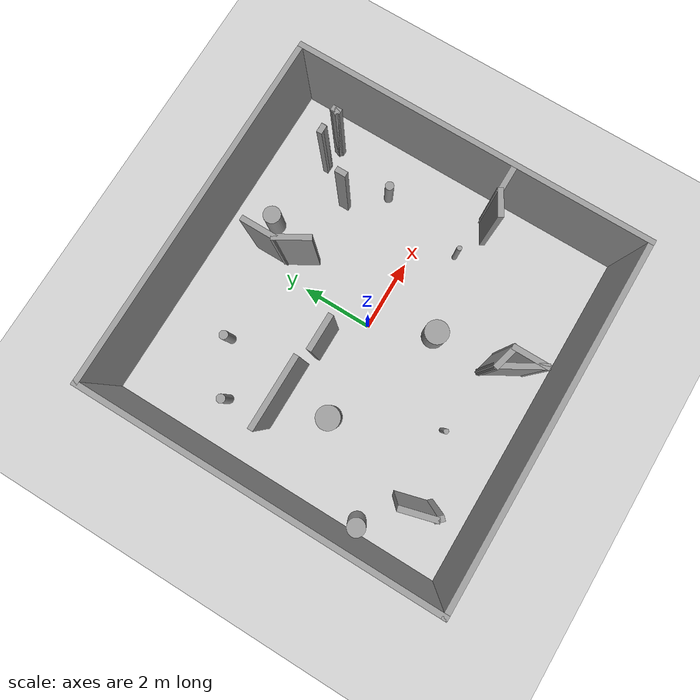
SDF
<sdf version="1.6">
 <world name="default">
  <light name="sun" type="directional">
   <pose>0 0 10 0 -0 0</pose>
   <diffuse>0.8 0.8 0.8 1</diffuse>
   <specular>0.2 0.2 0.2 1</specular>
   <attenuation>
    <range>1000</range>
    <constant>0.9</constant>
    <linear>0.01</linear>
    <quadratic>0.001</quadratic>
   </attenuation>
   <direction>-0.5 0.1 -0.9</direction>
  </light>
  <model name="ground_plane">
   <static>1</static>
   <link name="link">
    <collision name="collision">
     <geometry><plane><normal>0 0 1</normal><size>100 100</size></plane></geometry>
     <surface><friction><ode><mu>100</mu><mu2>50</mu2></ode></friction></surface>
    </collision>
    <visual name="visual">
     <cast_shadows>0</cast_shadows>
     <geometry><plane><normal>0 0 1</normal><size>100 100</size></plane></geometry>
     <material>
      <ambient>1 1 1 1</ambient>
      <diffuse>0.8 0.8 0.8 1</diffuse>
      <specular>0.01 0.01 0.01 1</specular>
     </material>
    </visual>
   </link>
  </model>
  <gravity>0 0 -9.8</gravity>
  <magnetic_field>6e-06 2.3e-05 -4.2e-05</magnetic_field>
  <atmosphere type="adiabatic"/>
  <physics name="default_physics" default="0" type="ode">
   <max_step_size>0.001</max_step_size>
   <real_time_factor>1</real_time_factor>
   <real_time_update_rate>1000</real_time_update_rate>
  </physics>
  <scene><ambient>0.4 0.4 0.4 1</ambient><background>0.7 0.7 0.7 1</background><shadows>1</shadows></scene>
  <spherical_coordinates>
   <surface_model>EARTH_WGS84</surface_model>
   <latitude_deg>0</latitude_deg>
   <longitude_deg>0</longitude_deg>
   <elevation>0</elevation>
   <heading_deg>0</heading_deg>
  </spherical_coordinates>
  <plugin name="gazebo_occupancy_map" filename="libgazebo_2Dmap_plugin.so">
   <map_resolution>0.025</map_resolution>
   <map_height>0.1</map_height>
  </plugin>
  <model name="10x10_training">
   <pose>0.025359 -0.006233 0 0 -0 0</pose>
   <link name="Wall_11">
    <collision name="Wall_11_Collision">
     <geometry><box><size>10 0.15 2.5</size></box></geometry>
     <pose>0 0 1.25 0 -0 0</pose>
    </collision>
    <visual name="Wall_11_Visual">
     <pose>0 0 1.25 0 -0 0</pose>
     <geometry><box><size>10 0.15 2.5</size></box></geometry>
     <material>
      <script><uri>file://media/materials/scripts/gazebo.material</uri><name>Gazebo/Grey</name></script>
      <ambient>1 1 1 1</ambient>
     </material>
     <meta><layer>0</layer></meta>
    </visual>
    <pose>0 -4.925 0 0 -0 3.14159</pose>
   </link>
   <link name="Wall_12">
    <collision name="Wall_12_Collision">
     <geometry><box><size>10 0.15 2.5</size></box></geometry>
     <pose>0 0 1.25 0 -0 0</pose>
    </collision>
    <visual name="Wall_12_Visual">
     <pose>0 0 1.25 0 -0 0</pose>
     <geometry><box><size>10 0.15 2.5</size></box></geometry>
     <material>
      <script><uri>file://media/materials/scripts/gazebo.material</uri><name>Gazebo/Grey</name></script>
      <ambient>1 1 1 1</ambient>
     </material>
     <meta><layer>0</layer></meta>
    </visual>
    <pose>-4.925 0 0 0 -0 1.5708</pose>
   </link>
   <link name="Wall_13">
    <collision name="Wall_13_Collision">
     <geometry><box><size>10 0.15 2.5</size></box></geometry>
     <pose>0 0 1.25 0 -0 0</pose>
    </collision>
    <visual name="Wall_13_Visual">
     <pose>0 0 1.25 0 -0 0</pose>
     <geometry><box><size>10 0.15 2.5</size></box></geometry>
     <material>
      <script><uri>file://media/materials/scripts/gazebo.material</uri><name>Gazebo/Grey</name></script>
      <ambient>1 1 1 1</ambient>
     </material>
     <meta><layer>0</layer></meta>
    </visual>
    <pose>0 4.925 0 0 -0 0</pose>
   </link>
   <link name="Wall_9">
    <collision name="Wall_9_Collision">
     <geometry><box><size>10 0.15 2.5</size></box></geometry>
     <pose>0 0 1.25 0 -0 0</pose>
    </collision>
    <visual name="Wall_9_Visual">
     <pose>0 0 1.25 0 -0 0</pose>
     <geometry><box><size>10 0.15 2.5</size></box></geometry>
     <material>
      <script><uri>file://media/materials/scripts/gazebo.material</uri><name>Gazebo/Grey</name></script>
      <ambient>1 1 1 1</ambient>
     </material>
     <meta><layer>0</layer></meta>
    </visual>
    <pose>4.925 0 0 0 0 -1.5708</pose>
   </link>
   <static>1</static>
  </model>
  <model name="cylinder0">
   <pose>1.1301 3.65341 0.5 0 -0 0</pose>
   <link name="link">
    <collision name="collision">
     <geometry><cylinder><radius>0.245872</radius><length>1</length></cylinder></geometry>
    </collision>
    <visual name="visual">
     <geometry><cylinder><radius>0.245872</radius><length>1</length></cylinder></geometry>
     <material>
      <script><name>Gazebo/Grey</name><uri>file://media/materials/scripts/gazebo.material</uri></script>
     </material>
    </visual>
   </link>
   <static>1</static>
  </model>
  <model name="cylinder1">
   <pose>-1.38282 -3.13892 0.5 0 0 -1e-06</pose>
   <link name="link">
    <collision name="collision">
     <geometry><cylinder><radius>0.07</radius><length>1</length></cylinder></geometry>
    </collision>
    <visual name="visual">
     <geometry><cylinder><radius>0.07</radius><length>1</length></cylinder></geometry>
     <material>
      <script><name>Gazebo/Grey</name><uri>file://media/materials/scripts/gazebo.material</uri></script>
     </material>
    </visual>
   </link>
   <static>1</static>
  </model>
  <model name="cylinder2">
   <pose>-2.22229 3.00079 0.5 0 0 -1e-06</pose>
   <link name="link">
    <inertial>
     <mass>1</mass>
     <inertia><ixx>0.145833</ixx><ixy>0</ixy><ixz>0</ixz><iyy>0.145833</iyy><iyz>0</iyz><izz>0.125</izz></inertia>
    </inertial>
    <collision name="collision">
     <geometry><cylinder><radius>0.122936</radius><length>1</length></cylinder></geometry>
    </collision>
    <visual name="visual">
     <geometry><cylinder><radius>0.122936</radius><length>1</length></cylinder></geometry>
     <material>
      <script><name>Gazebo/Grey</name><uri>file://media/materials/scripts/gazebo.material</uri></script>
     </material>
    </visual>
   </link>
   <static>1</static>
  </model>
  <model name="unit_cylinder_clone_1">
   <pose>3.42897 1.38684 0.499993 0 0 -1e-06</pose>
   <link name="link">
    <collision name="collision">
     <geometry><cylinder><radius>0.122936</radius><length>1</length></cylinder></geometry>
    </collision>
    <visual name="visual">
     <geometry><cylinder><radius>0.122936</radius><length>1</length></cylinder></geometry>
     <material>
      <script><name>Gazebo/Grey</name><uri>file://media/materials/scripts/gazebo.material</uri></script>
     </material>
    </visual>
   </link>
   <static>1</static>
  </model>
  <model name="cylinder4">
   <pose>-2.63498 -0.410115 0.5 0 0 -1e-06</pose>
   <link name="link">
    <collision name="collision">
     <geometry><cylinder><radius>0.33</radius><length>1</length></cylinder></geometry>
    </collision>
    <visual name="visual">
     <geometry><cylinder><radius>0.33</radius><length>1</length></cylinder></geometry>
     <material>
      <script><name>Gazebo/Grey</name><uri>file://media/materials/scripts/gazebo.material</uri></script>
     </material>
    </visual>
   </link>
   <static>1</static>
  </model>
  <model name="cylinder1_clone">
   <pose>2.90594 -1.06298 0.5 0 0 -1e-06</pose>
   <link name="link">
    <collision name="collision">
     <geometry><cylinder><radius>0.07</radius><length>1</length></cylinder></geometry>
    </collision>
    <visual name="visual">
     <geometry><cylinder><radius>0.07</radius><length>1</length></cylinder></geometry>
     <material>
      <script><name>Gazebo/Grey</name><uri>file://media/materials/scripts/gazebo.material</uri></script>
     </material>
    </visual>
   </link>
   <static>1</static>
  </model>
  <model name="unit_cylinder_clone_1_clone">
   <pose>-3.62387 2.17324 0.499993 0 0 -1e-06</pose>
   <link name="link">
    <collision name="collision">
     <geometry><cylinder><radius>0.122936</radius><length>1</length></cylinder></geometry>
    </collision>
    <visual name="visual">
     <geometry><cylinder><radius>0.122936</radius><length>1</length></cylinder></geometry>
     <material>
      <script><name>Gazebo/Grey</name><uri>file://media/materials/scripts/gazebo.material</uri></script>
     </material>
    </visual>
   </link>
   <static>1</static>
  </model>
  <model name="cylinder4_clone">
   <pose>0.677816 -1.67404 0.5 0 0 -1e-06</pose>
   <link name="link">
    <collision name="collision">
     <geometry><cylinder><radius>0.33</radius><length>1</length></cylinder></geometry>
    </collision>
    <visual name="visual">
     <geometry><cylinder><radius>0.33</radius><length>1</length></cylinder></geometry>
     <material>
      <script><name>Gazebo/Grey</name><uri>file://media/materials/scripts/gazebo.material</uri></script>
     </material>
    </visual>
   </link>
   <static>1</static>
  </model>
  <model name="cylinder0_clone">
   <pose>-4.54298 -2.40592 0.5 0 -0 0</pose>
   <link name="link">
    <collision name="collision">
     <geometry><cylinder><radius>0.245872</radius><length>1</length></cylinder></geometry>
    </collision>
    <visual name="visual">
     <geometry><cylinder><radius>0.245872</radius><length>1</length></cylinder></geometry>
     <material>
      <script><name>Gazebo/Grey</name><uri>file://media/materials/scripts/gazebo.material</uri></script>
     </material>
    </visual>
   </link>
   <static>1</static>
  </model>
  <model name="more_extra_walls">
   <pose>0.5795 -0.267345 0 0 -0 0</pose>
   <link name="Wall_1">
    <collision name="Wall_1_Collision">
     <geometry><box><size>0.25 0.15 2.5</size></box></geometry>
     <pose>0 0 1.25 0 -0 0</pose>
    </collision>
    <visual name="Wall_1_Visual">
     <pose>0 0 1.25 0 -0 0</pose>
     <geometry><box><size>0.25 0.15 2.5</size></box></geometry>
     <material>
      <script><uri>file://media/materials/scripts/gazebo.material</uri><name>Gazebo/Grey</name></script>
      <ambient>1 1 1 1</ambient>
     </material>
     <meta><layer>0</layer></meta>
    </visual>
    <pose>-3.76485 -3.5173 0 0 -0 2.35619</pose>
   </link>
   <link name="Wall_12">
    <collision name="Wall_12_Collision">
     <geometry><box><size>0.75 0.15 2.5</size></box></geometry>
     <pose>0 0 1.25 0 -0 0</pose>
    </collision>
    <visual name="Wall_12_Visual">
     <pose>0 0 1.25 0 -0 0</pose>
     <geometry><box><size>0.75 0.15 2.5</size></box></geometry>
     <material>
      <script><uri>file://media/materials/scripts/gazebo.material</uri><name>Gazebo/Grey</name></script>
      <ambient>1 1 1 1</ambient>
     </material>
     <meta><layer>0</layer></meta>
    </visual>
    <pose>3.9205 -0.942655 0 0 -0 0</pose>
   </link>
   <link name="Wall_14">
    <collision name="Wall_14_Collision">
     <geometry><box><size>0.75 0.15 2.5</size></box></geometry>
     <pose>0 0 1.25 0 -0 0</pose>
    </collision>
    <visual name="Wall_14_Visual">
     <pose>0 0 1.25 0 -0 0</pose>
     <geometry><box><size>0.75 0.15 2.5</size></box></geometry>
     <material>
      <script><uri>file://media/materials/scripts/gazebo.material</uri><name>Gazebo/Grey</name></script>
      <ambient>1 1 1 1</ambient>
     </material>
     <meta><layer>0</layer></meta>
    </visual>
    <pose>3.36069 -1.09265 0 0 0 -2.61799</pose>
   </link>
   <link name="Wall_16">
    <collision name="Wall_16_Collision">
     <geometry><box><size>2 0.15 2.5</size></box></geometry>
     <pose>0 0 1.25 0 -0 0</pose>
    </collision>
    <visual name="Wall_16_Visual">
     <pose>0 0 1.25 0 -0 0</pose>
     <geometry><box><size>2 0.15 2.5</size></box></geometry>
     <material>
      <script><uri>file://media/materials/scripts/gazebo.material</uri><name>Gazebo/Grey</name></script>
      <ambient>1 1 1 1</ambient>
     </material>
     <meta><layer>0</layer></meta>
    </visual>
    <pose>-3.2955 1.16034 0 0 -0 0</pose>
   </link>
   <link name="Wall_18">
    <collision name="Wall_18_Collision">
     <geometry><box><size>1 0.15 2.5</size></box></geometry>
     <pose>0 0 1.25 0 -0 0</pose>
    </collision>
    <visual name="Wall_18_Visual">
     <pose>0 0 1.25 0 -0 0</pose>
     <geometry><box><size>1 0.15 2.5</size></box></geometry>
     <material>
      <script><uri>file://media/materials/scripts/gazebo.material</uri><name>Gazebo/Grey</name></script>
      <ambient>1 1 1 1</ambient>
     </material>
     <meta><layer>0</layer></meta>
    </visual>
    <pose>-1.5645 0.976345 0 0 -0 0</pose>
   </link>
   <link name="Wall_2">
    <collision name="Wall_2_Collision">
     <geometry><box><size>1 0.15 2.5</size></box></geometry>
     <pose>0 0 1.25 0 -0 0</pose>
    </collision>
    <visual name="Wall_2_Visual">
     <pose>0 0 1.25 0 -0 0</pose>
     <geometry><box><size>1 0.15 2.5</size></box></geometry>
     <material>
      <script><uri>file://media/materials/scripts/gazebo.material</uri><name>Gazebo/Grey</name></script>
      <ambient>1 1 1 1</ambient>
     </material>
     <meta><layer>0</layer></meta>
    </visual>
    <pose>-3.91021 -3.07143 0 0 -0 1.8326</pose>
   </link>
   <link name="Wall_20">
    <collision name="Wall_20_Collision">
     <geometry><box><size>1 0.15 2.5</size></box></geometry>
     <pose>0 0 1.25 0 -0 0</pose>
    </collision>
    <visual name="Wall_20_Visual">
     <pose>0 0 1.25 0 -0 0</pose>
     <geometry><box><size>1 0.15 2.5</size></box></geometry>
     <material>
      <script><uri>file://media/materials/scripts/gazebo.material</uri><name>Gazebo/Grey</name></script>
      <ambient>1 1 1 1</ambient>
     </material>
     <meta><layer>0</layer></meta>
    </visual>
    <pose>-0.184395 3.55509 0 0 0 -1.5708</pose>
   </link>
   <link name="Wall_21">
    <collision name="Wall_21_Collision">
     <geometry><box><size>1 0.15 2.5</size></box></geometry>
     <pose>0 0 1.25 0 -0 0</pose>
    </collision>
    <visual name="Wall_21_Visual">
     <pose>0 0 1.25 0 -0 0</pose>
     <geometry><box><size>1 0.15 2.5</size></box></geometry>
     <material>
      <script><uri>file://media/materials/scripts/gazebo.material</uri><name>Gazebo/Grey</name></script>
      <ambient>1 1 1 1</ambient>
     </material>
     <meta><layer>0</layer></meta>
    </visual>
    <pose>0.028105 2.76203 0 0 0 -1.0472</pose>
   </link>
   <link name="Wall_25">
    <collision name="Wall_25_Collision">
     <geometry><box><size>0.214579 0.15 2.5</size></box></geometry>
     <pose>0 0 1.25 0 -0 0</pose>
    </collision>
    <visual name="Wall_25_Visual">
     <pose>0 0 1.25 0 -0 0</pose>
     <geometry><box><size>0.214579 0.15 2.5</size></box></geometry>
     <material>
      <script><uri>file://media/materials/scripts/gazebo.material</uri><name>Gazebo/Grey</name></script>
      <ambient>1 1 1 1</ambient>
     </material>
     <meta><layer>0</layer></meta>
    </visual>
    <pose>3.30278 3.55424 0 0 0 -1.91299</pose>
   </link>
   <link name="Wall_26">
    <collision name="Wall_26_Collision">
     <geometry><box><size>0.214579 0.15 2.5</size></box></geometry>
     <pose>0 0 1.25 0 -0 0</pose>
    </collision>
    <visual name="Wall_26_Visual">
     <pose>0 0 1.25 0 -0 0</pose>
     <geometry><box><size>0.214579 0.15 2.5</size></box></geometry>
     <material>
      <script><uri>file://media/materials/scripts/gazebo.material</uri><name>Gazebo/Grey</name></script>
      <ambient>1 1 1 1</ambient>
     </material>
     <meta><layer>0</layer></meta>
    </visual>
    <pose>3.30278 3.55424 0 0 -0 1.2286</pose>
   </link>
   <link name="Wall_27">
    <collision name="Wall_27_Collision">
     <geometry><box><size>0.214579 0.15 2.5</size></box></geometry>
     <pose>0 0 1.25 0 -0 0</pose>
    </collision>
    <visual name="Wall_27_Visual">
     <pose>0 0 1.25 0 -0 0</pose>
     <geometry><box><size>0.214579 0.15 2.5</size></box></geometry>
     <material>
      <script><uri>file://media/materials/scripts/gazebo.material</uri><name>Gazebo/Grey</name></script>
      <ambient>1 1 1 1</ambient>
     </material>
     <meta><layer>0</layer></meta>
    </visual>
    <pose>3.30278 3.55424 0 0 0 -1.91299</pose>
   </link>
   <link name="Wall_28">
    <collision name="Wall_28_Collision">
     <geometry><box><size>0.214579 0.15 2.5</size></box></geometry>
     <pose>0 0 1.25 0 -0 0</pose>
    </collision>
    <visual name="Wall_28_Visual">
     <pose>0 0 1.25 0 -0 0</pose>
     <geometry><box><size>0.214579 0.15 2.5</size></box></geometry>
     <material>
      <script><uri>file://media/materials/scripts/gazebo.material</uri><name>Gazebo/Grey</name></script>
      <ambient>1 1 1 1</ambient>
     </material>
     <meta><layer>0</layer></meta>
    </visual>
    <pose>3.30278 3.55424 0 0 -0 1.2286</pose>
   </link>
   <link name="Wall_29">
    <collision name="Wall_29_Collision">
     <geometry><box><size>0.25 0.15 2.5</size></box></geometry>
     <pose>0 0 1.25 0 -0 0</pose>
    </collision>
    <visual name="Wall_29_Visual">
     <pose>0 0 1.25 0 -0 0</pose>
     <geometry><box><size>0.25 0.15 2.5</size></box></geometry>
     <material>
      <script><uri>file://media/materials/scripts/gazebo.material</uri><name>Gazebo/Grey</name></script>
      <ambient>1 1 1 1</ambient>
     </material>
     <meta><layer>0</layer></meta>
    </visual>
    <pose>3.34403 3.53466 0 0 0 -1.5708</pose>
   </link>
   <link name="Wall_31">
    <collision name="Wall_31_Collision">
     <geometry><box><size>0.16 0.15 2.5</size></box></geometry>
     <pose>0 0 1.25 0 -0 0</pose>
    </collision>
    <visual name="Wall_31_Visual">
     <pose>0 0 1.25 0 -0 0</pose>
     <geometry><box><size>0.16 0.15 2.5</size></box></geometry>
     <material>
      <script><uri>file://media/materials/scripts/gazebo.material</uri><name>Gazebo/Grey</name></script>
      <ambient>1 1 1 1</ambient>
     </material>
     <meta><layer>0</layer></meta>
    </visual>
    <pose>2.78631 3.58466 0 0 -0 0</pose>
   </link>
   <link name="Wall_32">
    <collision name="Wall_32_Collision">
     <geometry><box><size>0.16 0.15 2.5</size></box></geometry>
     <pose>0 0 1.25 0 -0 0</pose>
    </collision>
    <visual name="Wall_32_Visual">
     <pose>0 0 1.25 0 -0 0</pose>
     <geometry><box><size>0.16 0.15 2.5</size></box></geometry>
     <material>
      <script><uri>file://media/materials/scripts/gazebo.material</uri><name>Gazebo/Grey</name></script>
      <ambient>1 1 1 1</ambient>
     </material>
     <meta><layer>0</layer></meta>
    </visual>
    <pose>2.78631 3.58466 0 0 -0 3.14159</pose>
   </link>
   <link name="Wall_33">
    <collision name="Wall_33_Collision">
     <geometry><box><size>0.25 0.15 2.5</size></box></geometry>
     <pose>0 0 1.25 0 -0 0</pose>
    </collision>
    <visual name="Wall_33_Visual">
     <pose>0 0 1.25 0 -0 0</pose>
     <geometry><box><size>0.25 0.15 2.5</size></box></geometry>
     <material>
      <script><uri>file://media/materials/scripts/gazebo.material</uri><name>Gazebo/Grey</name></script>
      <ambient>1 1 1 1</ambient>
     </material>
     <meta><layer>0</layer></meta>
    </visual>
    <pose>2.73131 3.58466 0 0 -0 3.14159</pose>
   </link>
   <link name="Wall_35">
    <collision name="Wall_35_Collision">
     <geometry><box><size>0.3 0.15 2.5</size></box></geometry>
     <pose>0 0 1.25 0 -0 0</pose>
    </collision>
    <visual name="Wall_35_Visual">
     <pose>0 0 1.25 0 -0 0</pose>
     <geometry><box><size>0.3 0.15 2.5</size></box></geometry>
     <material>
      <script><uri>file://media/materials/scripts/gazebo.material</uri><name>Gazebo/Grey</name></script>
      <ambient>1 1 1 1</ambient>
     </material>
     <meta><layer>0</layer></meta>
    </visual>
    <pose>2.03608 2.59505 0 0 -0 1.5708</pose>
   </link>
   <link name="Wall_4">
    <collision name="Wall_4_Collision">
     <geometry><box><size>1 0.15 2.5</size></box></geometry>
     <pose>0 0 1.25 0 -0 0</pose>
    </collision>
    <visual name="Wall_4_Visual">
     <pose>0 0 1.25 0 -0 0</pose>
     <geometry><box><size>1 0.15 2.5</size></box></geometry>
     <material>
      <script><uri>file://media/materials/scripts/gazebo.material</uri><name>Gazebo/Grey</name></script>
      <ambient>1 1 1 1</ambient>
     </material>
     <meta><layer>0</layer></meta>
    </visual>
    <pose>0.4705 -3.52766 0 0 -0 1.5708</pose>
   </link>
   <link name="Wall_5">
    <collision name="Wall_5_Collision">
     <geometry><box><size>0.75 0.15 2.5</size></box></geometry>
     <pose>0 0 1.25 0 -0 0</pose>
    </collision>
    <visual name="Wall_5_Visual">
     <pose>0 0 1.25 0 -0 0</pose>
     <geometry><box><size>0.75 0.15 2.5</size></box></geometry>
     <material>
      <script><uri>file://media/materials/scripts/gazebo.material</uri><name>Gazebo/Grey</name></script>
      <ambient>1 1 1 1</ambient>
     </material>
     <meta><layer>0</layer></meta>
    </visual>
    <pose>0.180722 -3.02501 0 0 -0 2.87979</pose>
   </link>
   <link name="Wall_6">
    <collision name="Wall_6_Collision">
     <geometry><box><size>1.31039 0.15 2.5</size></box></geometry>
     <pose>0 0 1.25 0 -0 0</pose>
    </collision>
    <visual name="Wall_6_Visual">
     <pose>0 0 1.25 0 -0 0</pose>
     <geometry><box><size>1.31039 0.15 2.5</size></box></geometry>
     <material>
      <script><uri>file://media/materials/scripts/gazebo.material</uri><name>Gazebo/Grey</name></script>
      <ambient>1 1 1 1</ambient>
     </material>
     <meta><layer>0</layer></meta>
    </visual>
    <pose>0.180722 -3.45001 0 0 0 -1.04783</pose>
   </link>
   <static>1</static>
  </model>
 </world>
</sdf>
